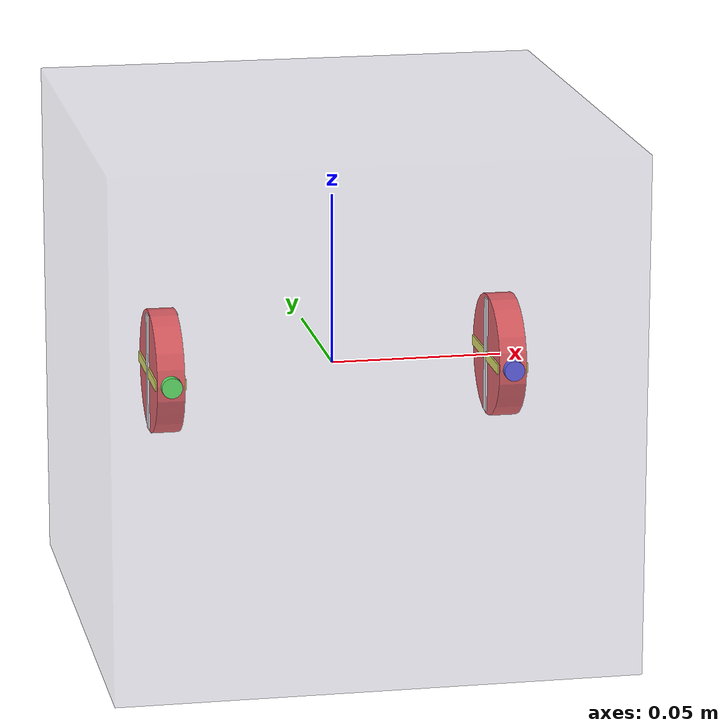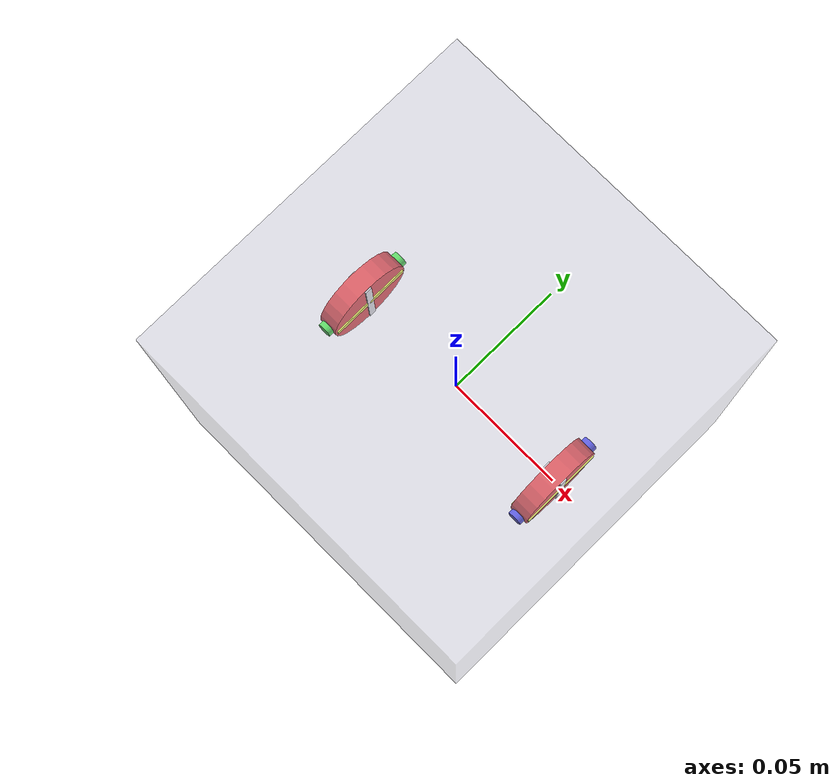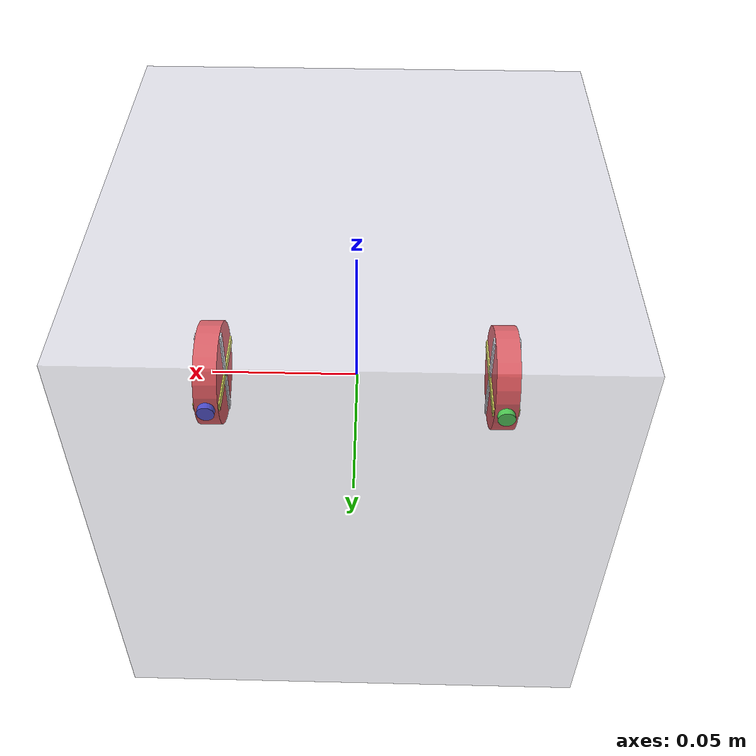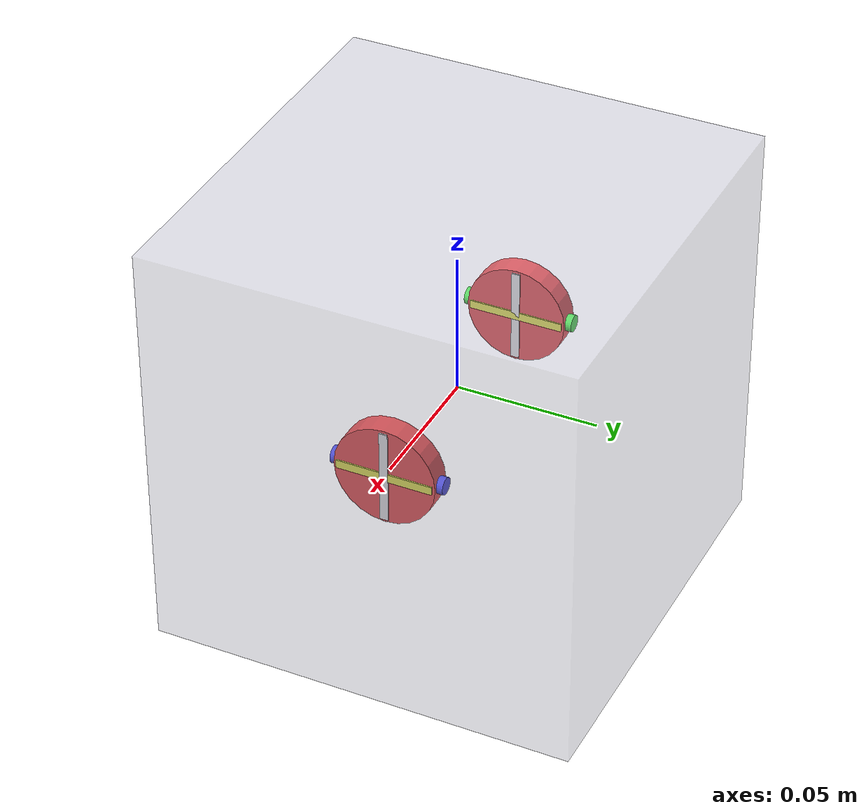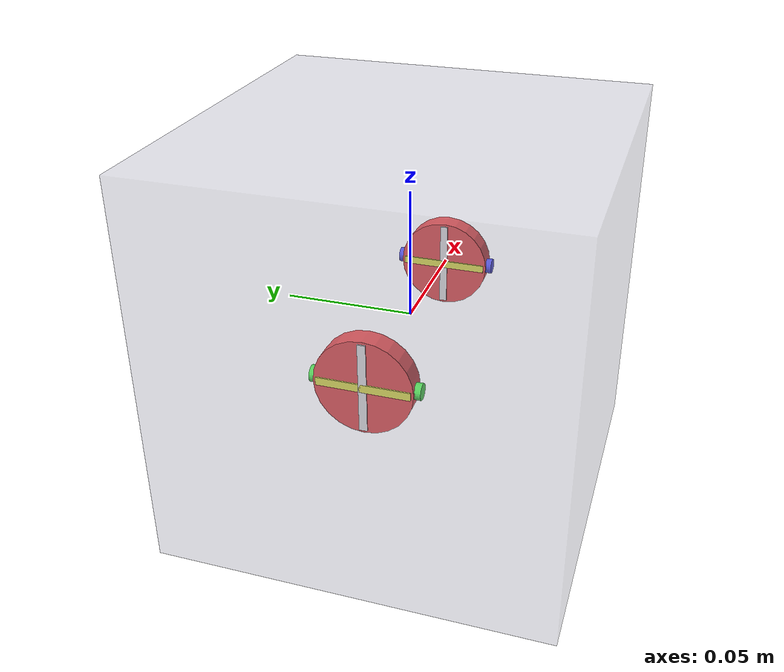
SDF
<?xml version="1.0"?>
<sdf version="1.9">
  <world name="cmg_testbed_world">

    <!-- DART physics: 1ms step for gyroscopic accuracy -->
    <physics name="cmg_physics" type="dart">
      <max_step_size>0.001</max_step_size>
      <real_time_factor>1.0</real_time_factor>
      <real_time_update_rate>1000</real_time_update_rate>
    </physics>

    <gravity>0 0 0</gravity>

    <scene>
      <ambient>0.4 0.4 0.45 1</ambient>
      <background>0 0 0 1</background>
      <shadows>true</shadows>
      <grid>false</grid>
    </scene>

    <!-- Main light: front-top-right, bright -->
    <light type="directional" name="sun">
      <cast_shadows>true</cast_shadows>
      <pose>5 5 10 0 0 0</pose>
      <diffuse>0.9 0.9 0.95 1</diffuse>
      <specular>0.5 0.5 0.5 1</specular>
      <direction>-0.4 -0.4 -0.8</direction>
    </light>

    <!-- Fill light: back-left, softer -->
    <light type="directional" name="fill">
      <cast_shadows>false</cast_shadows>
      <pose>-5 -5 5 0 0 0</pose>
      <diffuse>0.4 0.4 0.5 1</diffuse>
      <specular>0.1 0.1 0.1 1</specular>
      <direction>0.4 0.4 -0.6</direction>
    </light>

    <!-- Camera: isometric view, close to model -->
    <gui fullscreen="0">
      <camera name="user_camera">
        <pose>0.35 0.35 0.25 0 0.35 -2.36</pose>
      </camera>
    </gui>

    <!-- System plugins -->
    <plugin filename="gz-sim-physics-system"
            name="gz::sim::systems::Physics"/>
    <plugin filename="gz-sim-sensors-system"
            name="gz::sim::systems::Sensors">
      <render_engine>ogre2</render_engine>
    </plugin>
    <plugin filename="gz-sim-user-commands-system"
            name="gz::sim::systems::UserCommands"/>
    <plugin filename="gz-sim-scene-broadcaster-system"
            name="gz::sim::systems::SceneBroadcaster"/>
    <plugin filename="gz-sim-imu-system"
            name="gz::sim::systems::Imu"/>

    <!-- CMG Testbed model -->
    <include>
      <uri>model://cmg_testbed</uri>
      <name>cmg_testbed</name>
      <pose>0 0 0 0 0 0</pose>
    </include>

  </world>
</sdf>

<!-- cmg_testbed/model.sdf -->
<sdf version="1.9">
  <model name="cmg_testbed">
    <!--
      CMG dynamics testbed — cubesat_cmg와 동일 구조
      All parameters from MATLAB CMG_sim.m (150mm layout)
      use_force_commands=false: kinematic velocity, DART computes gyroscopic effects
    -->
    <self_collide>false</self_collide>

    <!-- ========== BODY: 150mm cube ========== -->
    <!-- MATLAB: body_size=[0.15,0.15,0.15], m_sat=3.5 kg -->
    <!-- Body mass = 3.5 - 2*(0.05 gimbal + 0.1 wheel) = 3.2 kg -->
    <link name="body">
      <pose>0 0 0 0 0 0</pose>
      <inertial>
        <mass>3.2</mass>
        <inertia>
          <ixx>0.012</ixx> <iyy>0.012</iyy> <izz>0.012</izz>
          <ixy>0</ixy> <ixz>0</ixz> <iyz>0</iyz>
        </inertia>
      </inertial>

      <visual name="body_visual">
        <geometry><box><size>0.15 0.15 0.15</size></box></geometry>
        <material>
          <ambient>0.5 0.5 0.6 1</ambient>
          <diffuse>0.6 0.6 0.7 1</diffuse>
          <specular>0.2 0.2 0.2 1</specular>
        </material>
        <transparency>0.7</transparency>
      </visual>

      <!-- IMU sensor (100Hz, no noise) -->
      <sensor name="imu" type="imu">
        <always_on>true</always_on>
        <update_rate>100</update_rate>
        <topic>cmg_testbed/imu</topic>
        <imu>
          <angular_velocity>
            <x><noise type="none"/></x>
            <y><noise type="none"/></y>
            <z><noise type="none"/></z>
          </angular_velocity>
          <linear_acceleration>
            <x><noise type="none"/></x>
            <y><noise type="none"/></y>
            <z><noise type="none"/></z>
          </linear_acceleration>
        </imu>
      </sensor>
    </link>

    <!-- ========== CMG 1: +X side ========== -->
    <!-- MATLAB: pos=[0.05;0;0], a=[0;1;0], s0=[1;0;0] -->
    <link name="cmg1_gimbal">
      <pose relative_to="body">0.05 0 0 0 0 0</pose>
      <inertial>
        <mass>0.05</mass>
        <inertia>
          <ixx>1e-6</ixx> <iyy>1e-6</iyy> <izz>1e-6</izz>
          <ixy>0</ixy> <ixz>0</ixz> <iyz>0</iyz>
        </inertia>
      </inertial>
      <visual name="cmg1_gimbal_visual">
        <pose>0 0 0 1.5708 0 0</pose>
        <geometry><cylinder><radius>0.003</radius><length>0.04</length></cylinder></geometry>
        <material>
          <ambient>0.2 0.2 0.9 1</ambient>
          <diffuse>0.3 0.3 1.0 1</diffuse>
        </material>
      </visual>
    </link>

    <link name="cmg1_wheel">
      <pose relative_to="cmg1_gimbal">0 0 0 0 0 0</pose>
      <inertial>
        <mass>0.1</mass>
        <inertia>
          <ixx>3.65e-5</ixx> <iyy>2e-5</iyy> <izz>2e-5</izz>
          <ixy>0</ixy> <ixz>0</ixz> <iyz>0</iyz>
        </inertia>
      </inertial>
      <visual name="cmg1_wheel_visual">
        <pose>0 0 0 0 1.5708 0</pose>
        <geometry><cylinder><radius>0.018</radius><length>0.008</length></cylinder></geometry>
        <material>
          <ambient>0.9 0.2 0.2 1</ambient>
          <diffuse>1.0 0.3 0.3 1</diffuse>
        </material>
      </visual>
      <!-- Rotation stripes: cross pattern on wheel face (spin axis = X) -->
      <visual name="cmg1_stripe_y">
        <geometry><box><size>0.009 0.034 0.003</size></box></geometry>
        <material>
          <ambient>1.0 1.0 0.2 1</ambient>
          <diffuse>1.0 1.0 0.3 1</diffuse>
        </material>
      </visual>
      <visual name="cmg1_stripe_z">
        <geometry><box><size>0.009 0.003 0.034</size></box></geometry>
        <material>
          <ambient>1.0 1.0 1.0 1</ambient>
          <diffuse>1.0 1.0 1.0 1</diffuse>
        </material>
      </visual>
    </link>

    <!-- ========== CMG 2: -X side ========== -->
    <!-- MATLAB: pos=[-0.05;0;0], a=[0;1;0], s0=[1;0;0] -->
    <link name="cmg2_gimbal">
      <pose relative_to="body">-0.05 0 0 0 0 0</pose>
      <inertial>
        <mass>0.05</mass>
        <inertia>
          <ixx>1e-6</ixx> <iyy>1e-6</iyy> <izz>1e-6</izz>
          <ixy>0</ixy> <ixz>0</ixz> <iyz>0</iyz>
        </inertia>
      </inertial>
      <visual name="cmg2_gimbal_visual">
        <pose>0 0 0 1.5708 0 0</pose>
        <geometry><cylinder><radius>0.003</radius><length>0.04</length></cylinder></geometry>
        <material>
          <ambient>0.2 0.9 0.2 1</ambient>
          <diffuse>0.3 1.0 0.3 1</diffuse>
        </material>
      </visual>
    </link>

    <link name="cmg2_wheel">
      <pose relative_to="cmg2_gimbal">0 0 0 0 0 0</pose>
      <inertial>
        <mass>0.1</mass>
        <inertia>
          <ixx>3.65e-5</ixx> <iyy>2e-5</iyy> <izz>2e-5</izz>
          <ixy>0</ixy> <ixz>0</ixz> <iyz>0</iyz>
        </inertia>
      </inertial>
      <visual name="cmg2_wheel_visual">
        <pose>0 0 0 0 1.5708 0</pose>
        <geometry><cylinder><radius>0.018</radius><length>0.008</length></cylinder></geometry>
        <material>
          <ambient>0.9 0.2 0.2 1</ambient>
          <diffuse>1.0 0.3 0.3 1</diffuse>
        </material>
      </visual>
      <!-- Rotation stripes: cross pattern on wheel face (spin axis = X) -->
      <visual name="cmg2_stripe_y">
        <geometry><box><size>0.009 0.034 0.003</size></box></geometry>
        <material>
          <ambient>1.0 1.0 0.2 1</ambient>
          <diffuse>1.0 1.0 0.3 1</diffuse>
        </material>
      </visual>
      <visual name="cmg2_stripe_z">
        <geometry><box><size>0.009 0.003 0.034</size></box></geometry>
        <material>
          <ambient>1.0 1.0 1.0 1</ambient>
          <diffuse>1.0 1.0 1.0 1</diffuse>
        </material>
      </visual>
    </link>

    <!-- ========== JOINTS ========== -->
    <joint name="cmg1_gimbal_joint" type="revolute">
      <parent>body</parent>
      <child>cmg1_gimbal</child>
      <axis>
        <xyz>0 1 0</xyz>
        <limit>
          <lower>-1e16</lower> <upper>1e16</upper>
          <effort>10</effort> <velocity>2.0</velocity>
        </limit>
        <dynamics><damping>0.0</damping><friction>0.0</friction></dynamics>
      </axis>
    </joint>

    <joint name="cmg1_wheel_joint" type="revolute">
      <parent>cmg1_gimbal</parent>
      <child>cmg1_wheel</child>
      <axis>
        <xyz>1 0 0</xyz>
        <limit>
          <lower>-1e16</lower> <upper>1e16</upper>
          <effort>1</effort> <velocity>2100</velocity>
        </limit>
        <dynamics><damping>0.0</damping><friction>0.0</friction></dynamics>
      </axis>
    </joint>

    <joint name="cmg2_gimbal_joint" type="revolute">
      <parent>body</parent>
      <child>cmg2_gimbal</child>
      <axis>
        <xyz>0 1 0</xyz>
        <limit>
          <lower>-1e16</lower> <upper>1e16</upper>
          <effort>10</effort> <velocity>2.0</velocity>
        </limit>
        <dynamics><damping>0.0</damping><friction>0.0</friction></dynamics>
      </axis>
    </joint>

    <joint name="cmg2_wheel_joint" type="revolute">
      <parent>cmg2_gimbal</parent>
      <child>cmg2_wheel</child>
      <axis>
        <xyz>1 0 0</xyz>
        <limit>
          <lower>-1e16</lower> <upper>1e16</upper>
          <effort>1</effort> <velocity>2100</velocity>
        </limit>
        <dynamics><damping>0.0</damping><friction>0.0</friction></dynamics>
      </axis>
    </joint>

    <!-- ========== PLUGINS ========== -->
    <!-- use_force_commands=false: kinematic velocity, DART computes gyroscopic effects -->

    <plugin filename="gz-sim-joint-controller-system"
            name="gz::sim::systems::JointController">
      <joint_name>cmg1_gimbal_joint</joint_name>
      <topic>/cmg_testbed/cmg1_gimbal/cmd_vel</topic>
      <initial_velocity>0.0</initial_velocity>
      <use_force_commands>false</use_force_commands>
    </plugin>

    <!-- Wheel 1: initial_velocity=0, GUI에서 RPM 설정 (급격한 spin-up 반력 방지) -->
    <plugin filename="gz-sim-joint-controller-system"
            name="gz::sim::systems::JointController">
      <joint_name>cmg1_wheel_joint</joint_name>
      <topic>/cmg_testbed/cmg1_wheel/cmd_vel</topic>
      <initial_velocity>0.0</initial_velocity>
      <use_force_commands>false</use_force_commands>
    </plugin>

    <plugin filename="gz-sim-joint-controller-system"
            name="gz::sim::systems::JointController">
      <joint_name>cmg2_gimbal_joint</joint_name>
      <topic>/cmg_testbed/cmg2_gimbal/cmd_vel</topic>
      <initial_velocity>0.0</initial_velocity>
      <use_force_commands>false</use_force_commands>
    </plugin>

    <!-- Wheel 2: initial_velocity=0, GUI에서 RPM 설정 -->
    <plugin filename="gz-sim-joint-controller-system"
            name="gz::sim::systems::JointController">
      <joint_name>cmg2_wheel_joint</joint_name>
      <topic>/cmg_testbed/cmg2_wheel/cmd_vel</topic>
      <initial_velocity>0.0</initial_velocity>
      <use_force_commands>false</use_force_commands>
    </plugin>

    <plugin filename="gz-sim-joint-state-publisher-system"
            name="gz::sim::systems::JointStatePublisher">
      <joint_name>cmg1_gimbal_joint</joint_name>
      <joint_name>cmg1_wheel_joint</joint_name>
      <joint_name>cmg2_gimbal_joint</joint_name>
      <joint_name>cmg2_wheel_joint</joint_name>
      <topic>/cmg_testbed/joint_states</topic>
      <update_rate>100</update_rate>
    </plugin>

  </model>
</sdf>
